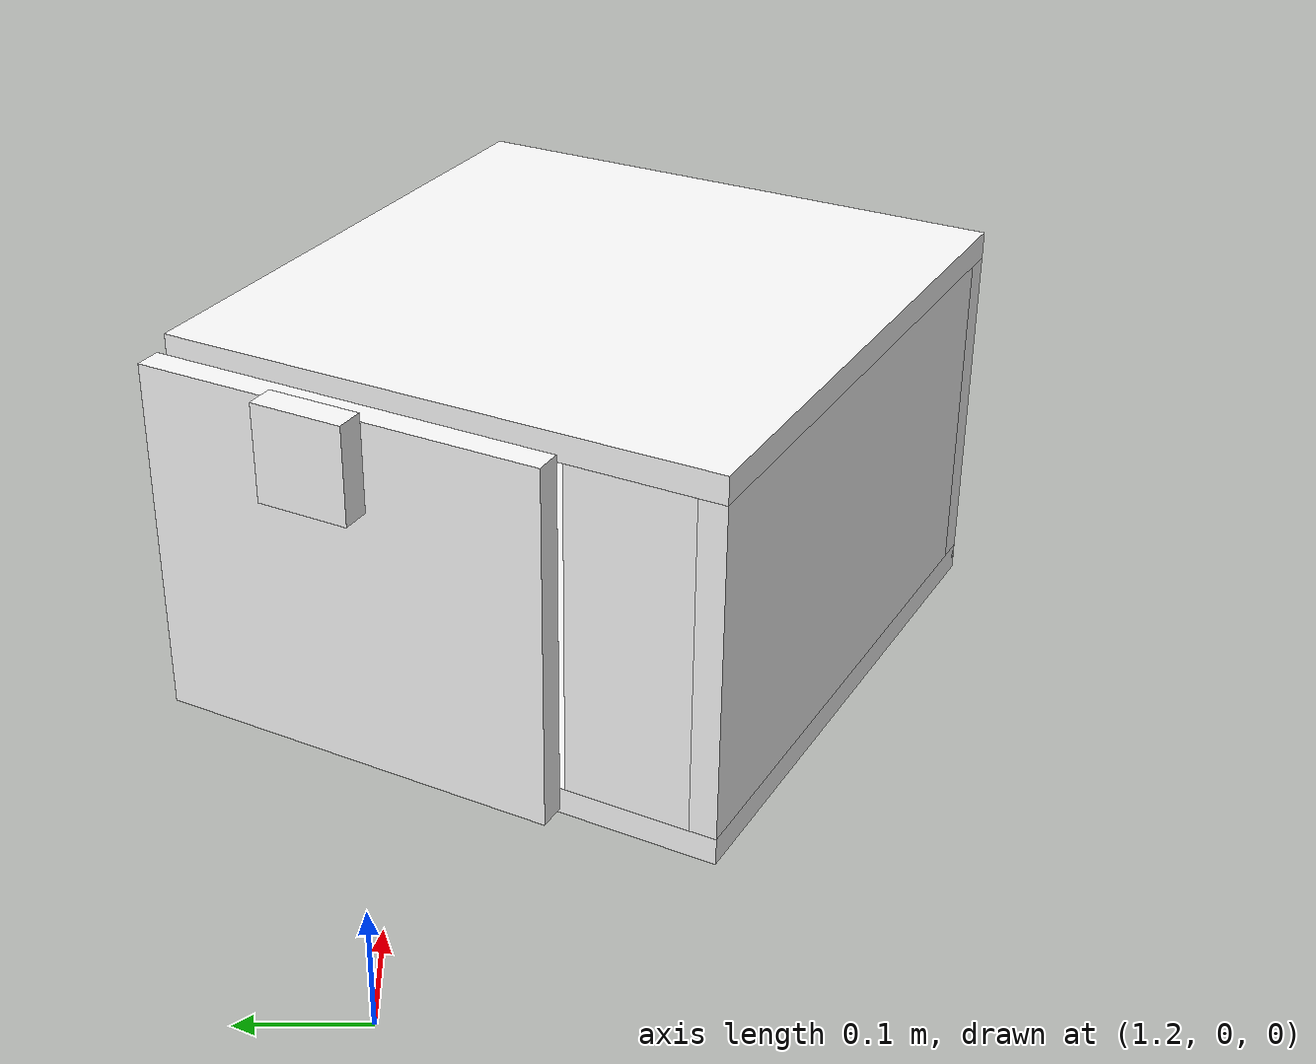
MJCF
<mujoco model="cabinet">
    <compiler angle="radian" eulerseq='zxy' />
    <option gravity = "0 0 0" />
    <option>
        <flag contact = "disable"/>
    </option>
    <statistic	extent="1.0" center="0.0 0.0 0.0"/>
    <visual>
        <map fogstart="3" fogend="5" force="0.1" znear=" 0.100000 " zfar=" 12.000000 "/>
    </visual>
    <size njmax="500" nconmax="100" />
    <actuator>
        <velocity joint="bottom_left_hinge" name="viva_revolution" kv='10'></velocity>
    </actuator>
    <asset>
        <texture builtin="flat" name="tabletex" height="32" width="32" rgb1="1 1 1" type="cube"></texture>
        <texture builtin="flat" name="objtex" height="32" width="32" rgb1="1 1 1" type="cube"></texture>
        <texture builtin="flat" name="handletex" height="32" width="32" rgb1="1 1 1" type="cube"></texture>
        <texture builtin="flat" name="wallpaper" height="32" width="32" rgb1="1 1 1" type="cube"></texture>
        <texture builtin="flat" name="kp" height="32" width="32" rgb1="1 1 1" type="cube"></texture>
        <material name="geomTable" shininess="0.03" specular="0.75" texture="tabletex"></material>
        <material name="geomObj" shininess="0.03" specular="0.75" texture="objtex"></material>
        <material name="geomHandle" shininess="0.03" specular="0.75" texture="handletex"></material>
        <material name="bg" shininess="0.03" specular="0.75" texture="wallpaper"></material>
        <material name="geomKeypad" shininess="0.03" specular="0.75" texture="kp"></material>
    </asset>
    <worldbody>
        <body name="cabinet_bottom" pos= " 1.546401 -0.161666 0.121344 "  quat= " 0.257219 0.000000 0.000000 0.966353" >
            <inertial pos="0 0 0" mass="1" diaginertia="1 1 1" />
            <geom size= " 0.231704 0.222000 0.010691 "  type="box" material="geomObj" name="b"/>
            <body name="cabinet_left" pos= " 0.000000 -0.211308 0.141962 " >
                <inertial pos="0 0 0" mass="1" diaginertia="1 1 1" />
                <geom size= " 0.231704 0.010691 0.141962 "  type="box" material="geomObj" name="c" />
            </body>
            <body name="cabinet_right" pos= " 0.000000 0.211308 0.141962 " >
                <inertial pos="0 0 0" mass="1" diaginertia="1 1 1" />
                <geom size= " 0.231704 0.010691 0.141962 "  type="box" material="geomObj" name="d" />
            </body>
            <body name="cabinet_top" pos= " 0.000000 0.000000 0.283925 " >
                <inertial pos="0 0 0" mass="1" diaginertia="1 1 1" />
                <geom size= " 0.231704 0.222000 0.010691 "  type="box" material="geomObj" name="e"/>
            </body>
            <body name="cabinet_back" pos= " -0.221012 0.000000 0.141962 "  >
                <inertial pos="0 0 0" mass="1" diaginertia="1 1 1" />
                <geom size= " 0.010691 0.222000 0.141962 "  type="box" material="geomObj" name="f" />
            </body>
            <body name="cabinet_keypad" pos= " 0.010691 0.161657 0.141962 " >
                <inertial pos="0 0 0" mass="1" diaginertia="1 1 1" />
                <geom size= " 0.221012 0.059343 0.131271 "  type="box" material="geomKeypad" name="keypizzlemynizzle" />
            </body>
            <body name="cabinet_left_hinge" pos= " 0.231704 -0.059343 0.000000 " >
                <inertial pos= " 0.020000 0.000000 0.141962 "  mass="1" diaginertia="1 1 1" />
                <joint name="bottom_left_hinge" type="hinge" pos="0 0 0" axis="0 1 0" limited="true" range= "0 2.3"  />
                <geom size= " 0.010691 0.162657 0.141962 "  pos= " 0.020000 0.000000 0.141962 "  type="box" material="geomObj" name="g"/>
                <body name="handle_link" pos= " 0.057926 0.000000 0.262542 " >
                    <inertial pos="0 0 0" mass="1" diaginertia="1 1 1" />
                    <geom size= " 0.011155 0.036114 0.037688 "  type="box" material="geomHandle" name="h"/>
                </body>
            </body>
        </body>
        <body name="external_camera_body_0" pos="0.0 0 0.00">
            <camera euler="-1.57 1.57 0.0" fovy=" 54.280851 " name="external_camera_0" pos="0.0 0 0"></camera>
            <inertial pos= " 0.00 0.0 0.000000 " mass="1" diaginertia="1 1 1" />
            <joint name="cam_j" pos="0.0 0 0" axis = "1 0 0" type="free" />
        </body>
    </worldbody>
</mujoco>
